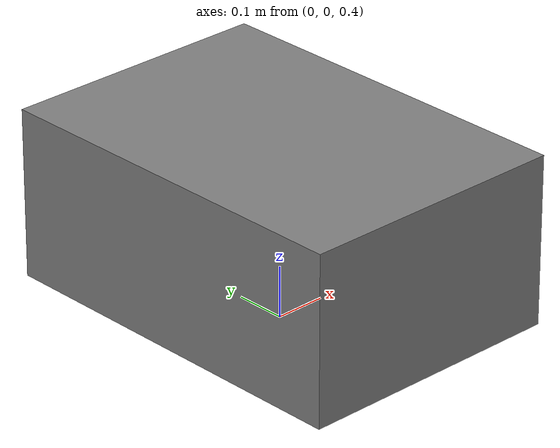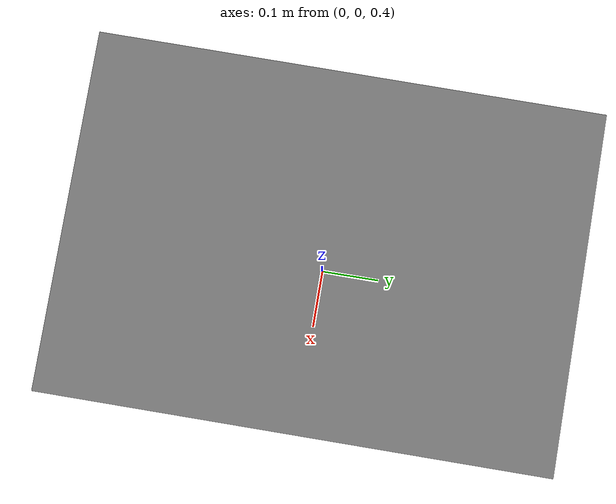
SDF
<?xml version="1.0" ?>
<sdf version="1.6">
  <model name="compliant_box">
    <pose>0 0 0.6 0 0 0</pose> <!-- Adjust the pose as needed -->

    <!-- Link: The main body of the box -->
    <link name="box_link">
      <pose>0 0 0 0 0 0</pose>

      <!-- Visual: How the box appears in the simulation -->
      <visual name="box_visual">
        <geometry>
          <box>
            <size>0.533 0.755 0.33</size> <!-- Size of the box -->
          </box>
        </geometry>
        <material>
          <ambient>0.2 0.2 0.2 1</ambient>
          <diffuse>0.5 0.5 0.5 1</diffuse>
          <specular>0.1 0.1 0.1 1</specular>
          <emissive>0 0 0 1</emissive>
        </material>
      </visual>

      <!-- Collision: The physical properties of the box -->
      <collision name="box_collision">
        <geometry>
          <box>
            <size>0.533 0.755 0.33</size>
          </box>
        </geometry>
        <surface>
          <contact>
            <ode>
              <kp>30000.0</kp> <!-- Moderate Spring stiffness to stabilize the attachment -->
              <kd>150.0</kd>   <!-- Increased Damping coefficient to reduce oscillations -->
            </ode>
          </contact>
          <bounce/>
          <friction>
            <ode>
              <mu>1.0</mu>      <!-- Increased friction coefficient for stable interaction -->
              <mu2>1.0</mu2>
            </ode>
          </friction>
        </surface>
      </collision>

      <!-- Inertial: The mass and inertia of the box -->
      <inertial>
        <mass>3.0</mass> <!-- Further increase mass to enhance stability during interactions -->
        <inertia>
          <ixx>0.04</ixx> <!-- Increased inertia values for better rotational stability -->
          <iyy>0.05</iyy>
          <izz>0.04</izz>
        </inertia>
      </inertial>
    </link>

    <!-- Enable model to be moved in simulation -->
  </model>
</sdf>
